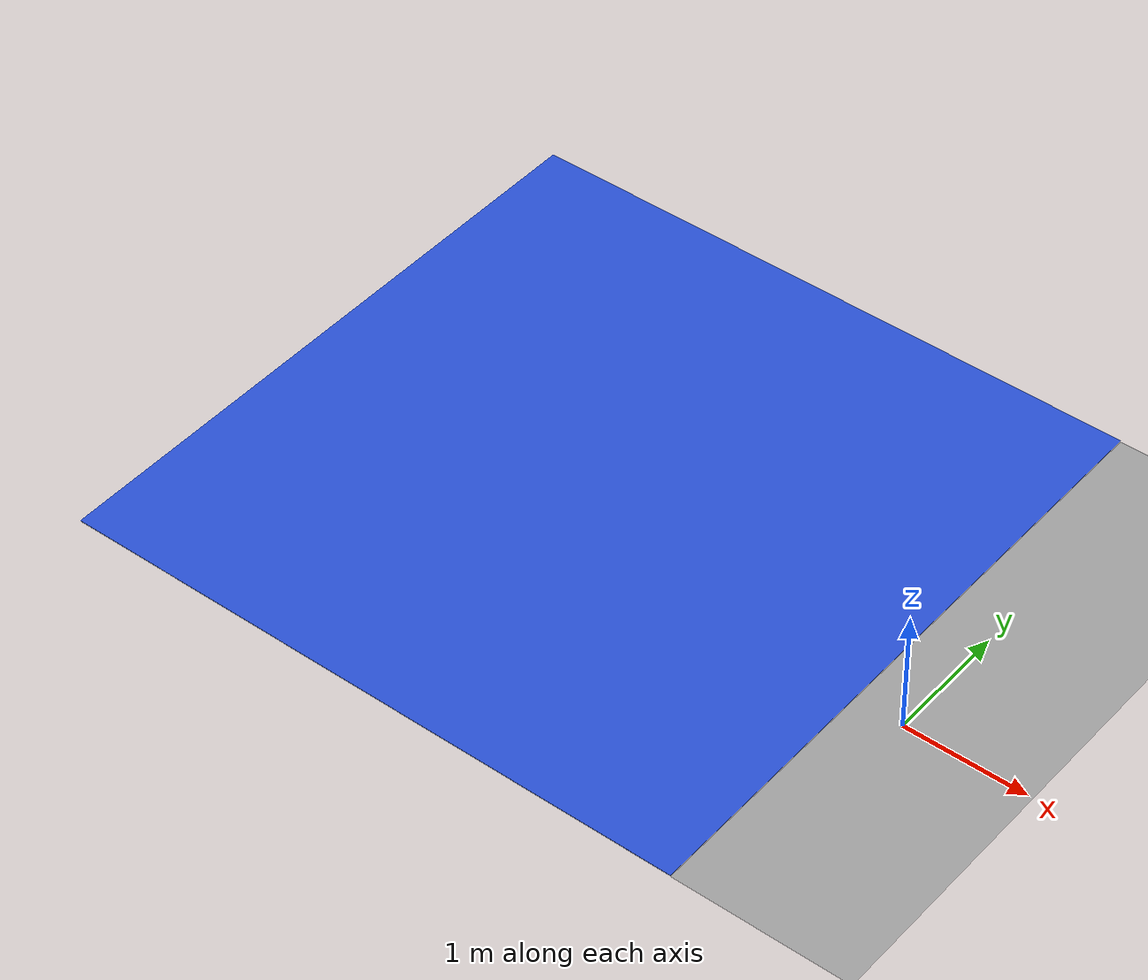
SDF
<sdf version='1.4'>
  <world name='default'>
    <scene>
      <ambient>0.4 0.4 0.4 1</ambient>
      <background>0.7 0.7 0.7 1</background>
      <shadows>true</shadows>
    </scene>
    <physics type='ode'>
      <max_step_size>0.001</max_step_size>
      <real_time_factor>1</real_time_factor>
      <real_time_update_rate>1000</real_time_update_rate>
      <gravity>0 0 -9.8</gravity>
    </physics>
    <spherical_coordinates>
      <surface_model>EARTH_WGS84</surface_model>
      <latitude_deg>0</latitude_deg>
      <longitude_deg>0</longitude_deg>
      <elevation>0</elevation>
      <heading_deg>0</heading_deg>
    </spherical_coordinates>
    <light name='sun' type='directional'>
      <cast_shadows>1</cast_shadows>
      <pose>0 0 10 0 -0 0</pose>
      <diffuse>0.8 0.8 0.8 1</diffuse>
      <specular>0.2 0.2 0.2 1</specular>
      <attenuation>
        <range>1000</range>
        <constant>0.9</constant>
        <linear>0.01</linear>
        <quadratic>0.001</quadratic>
      </attenuation>
      <direction>-0.5 0.1 -0.9</direction>
    </light>
    <model name='ground_plane1'>
      <pose>2.5 0 0.75 0 0 0</pose>
      <static>true</static>
      <link name='link'>
        <collision name='collision'>
          <geometry>
            <plane>
              <normal>0 0 1</normal>
              <size>5 5</size>
            </plane>
          </geometry>
          <surface>
            <friction>
              <ode>
                <mu>100</mu>
                <mu2>50</mu2>
              </ode>
            </friction>
            <bounce/>
            <contact>
              <ode/>
            </contact>
          </surface>
          <max_contacts>10</max_contacts>
        </collision>
        <visual name='visual'>
          <cast_shadows>0</cast_shadows>
          <geometry>
            <plane>
              <normal>0 0 1</normal>
              <size>5 5</size>
            </plane>
          </geometry>
          <material>
            <script>
              <uri>file://media/materials/scripts/gazebo.material</uri>
              <name>Gazebo/Grey</name>
            </script>
          </material>
        </visual>
        <velocity_decay>
          <linear>0</linear>
          <angular>0</angular>
        </velocity_decay>
        <self_collide>0</self_collide>
        <kinematic>0</kinematic>
        <gravity>1</gravity>
      </link>
    </model>
    <model name='ground_plane2'>
      <pose>-2.5 0 0.75 0 0 0</pose>
      <static>true</static>
      <link name='link'>
        <collision name='collision'>
          <geometry>
            <plane>
              <normal>0 0 1</normal>
              <size>5 5</size>
            </plane>
          </geometry>
          <surface>
            <friction>
              <ode>
                <mu>100</mu>
                <mu2>50</mu2>
              </ode>
            </friction>
            <bounce/>
            <contact>
              <ode/>
            </contact>
          </surface>
          <max_contacts>10</max_contacts>
        </collision>
        <visual name='visual'>
          <cast_shadows>0</cast_shadows>
          <geometry>
            <plane>
              <normal>0 0 1</normal>
              <size>5 5</size>
            </plane>
          </geometry>
          <material>
            <script>
              <uri>file://media/materials/scripts/gazebo.material</uri>
              <name>Gazebo/Blue</name>
            </script>
          </material>
        </visual>
        <velocity_decay>
          <linear>0</linear>
          <angular>0</angular>
        </velocity_decay>
        <self_collide>0</self_collide>
        <kinematic>0</kinematic>
        <gravity>1</gravity>
      </link>
    </model>
  </world>
</sdf>
